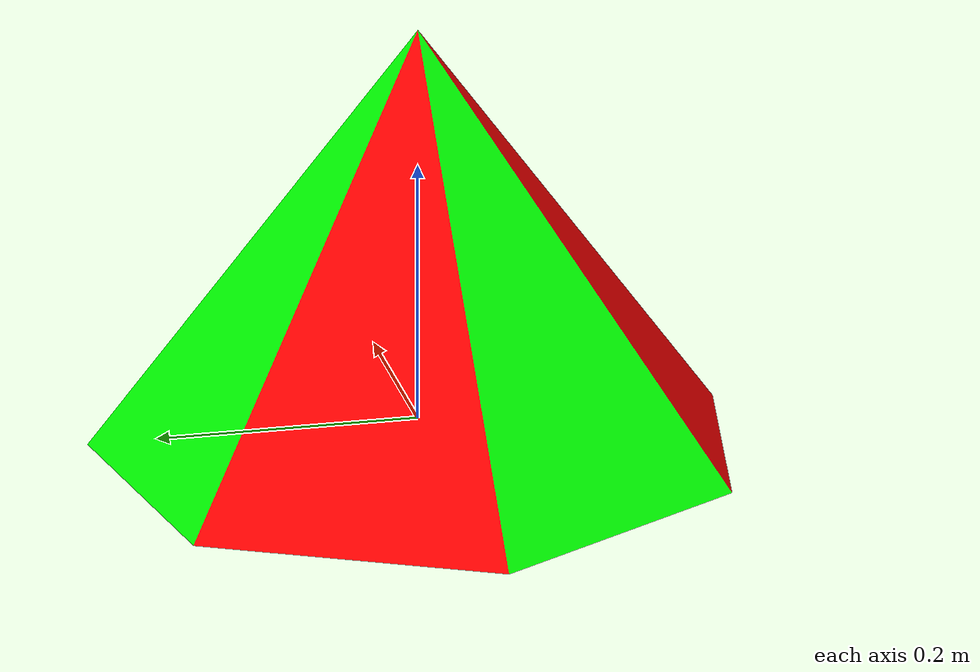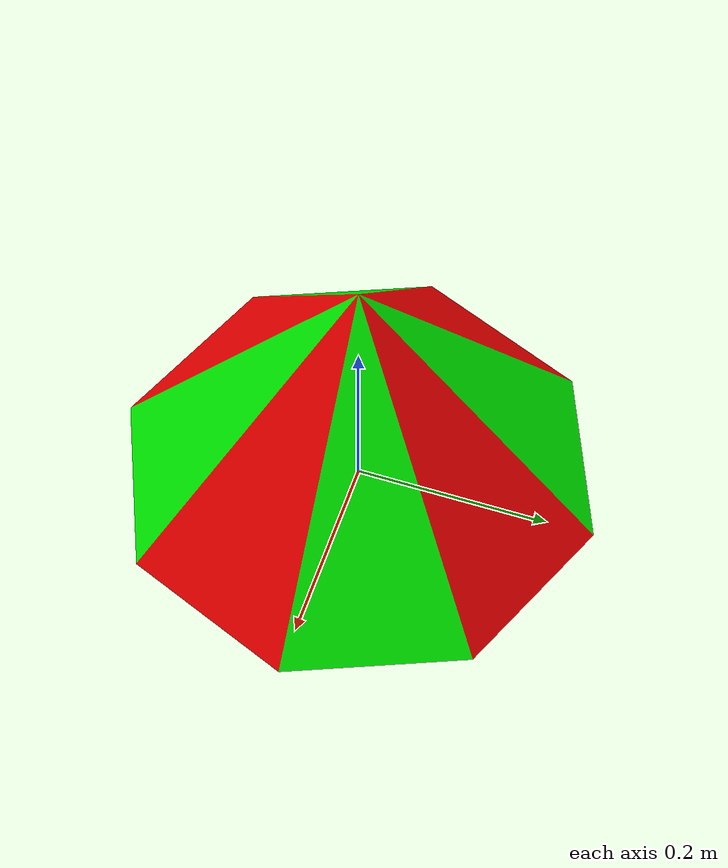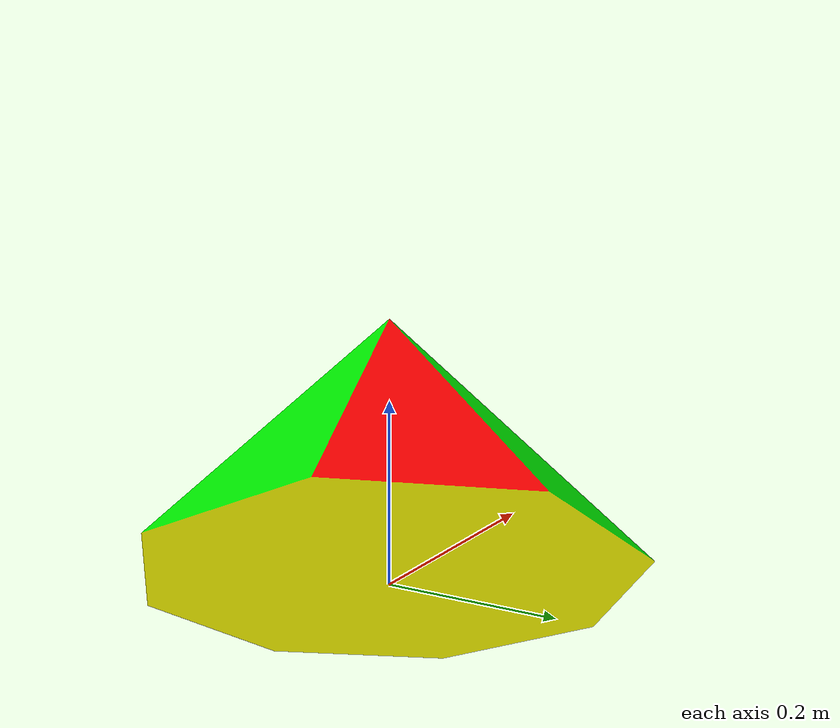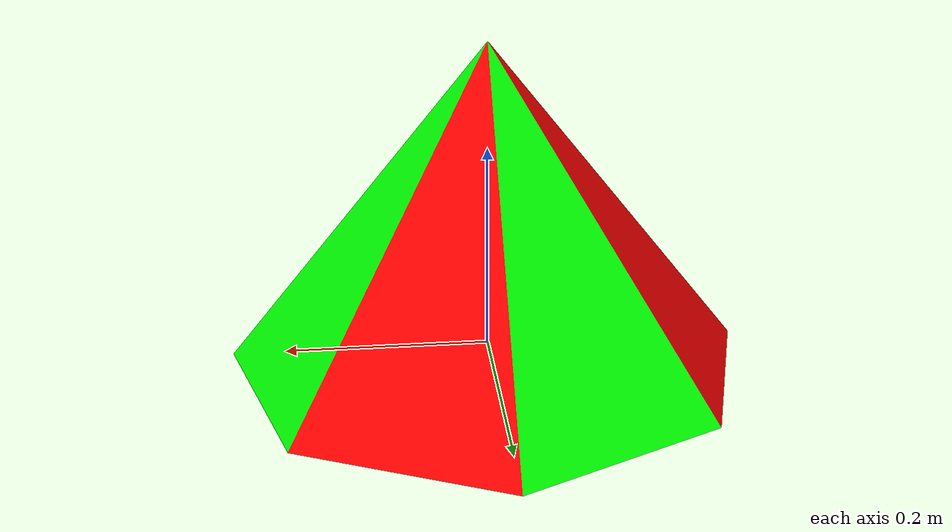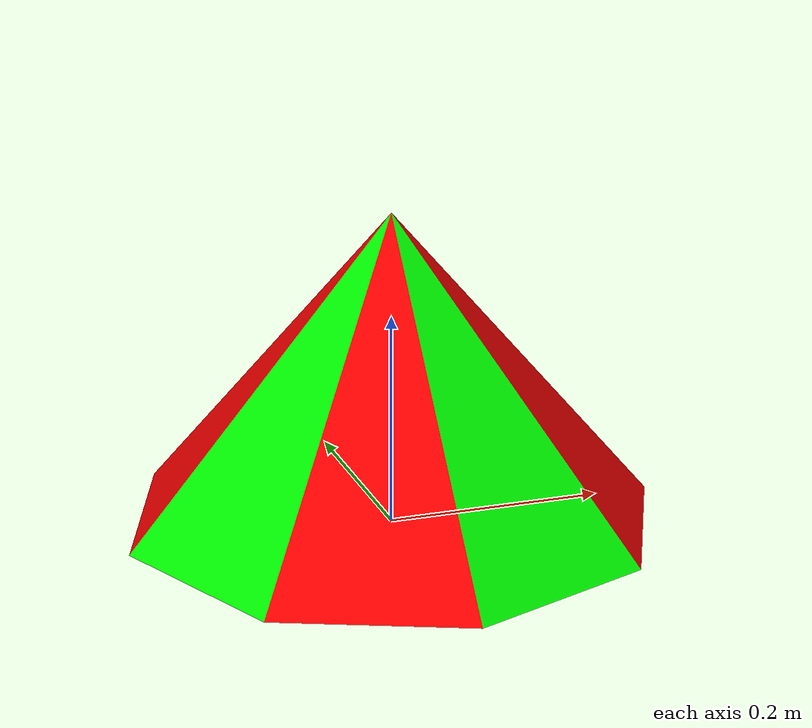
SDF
<?xml version="1.0"?>
<sdf version="1.6">
  <model name="8pyramid_basic">
    <static>true</static>
    <pose>0 0 0 0 0 0</pose>
    <link name="link1">

      <visual name="visual1">
        <geometry>
          <mesh>
            <uri>model://8pyramid_basic/meshes/8pyramid_basic.DAE</uri>
   	    <scale>1 1 1</scale>
          </mesh>
        </geometry>
      </visual>

    </link>
  </model>
</sdf>
